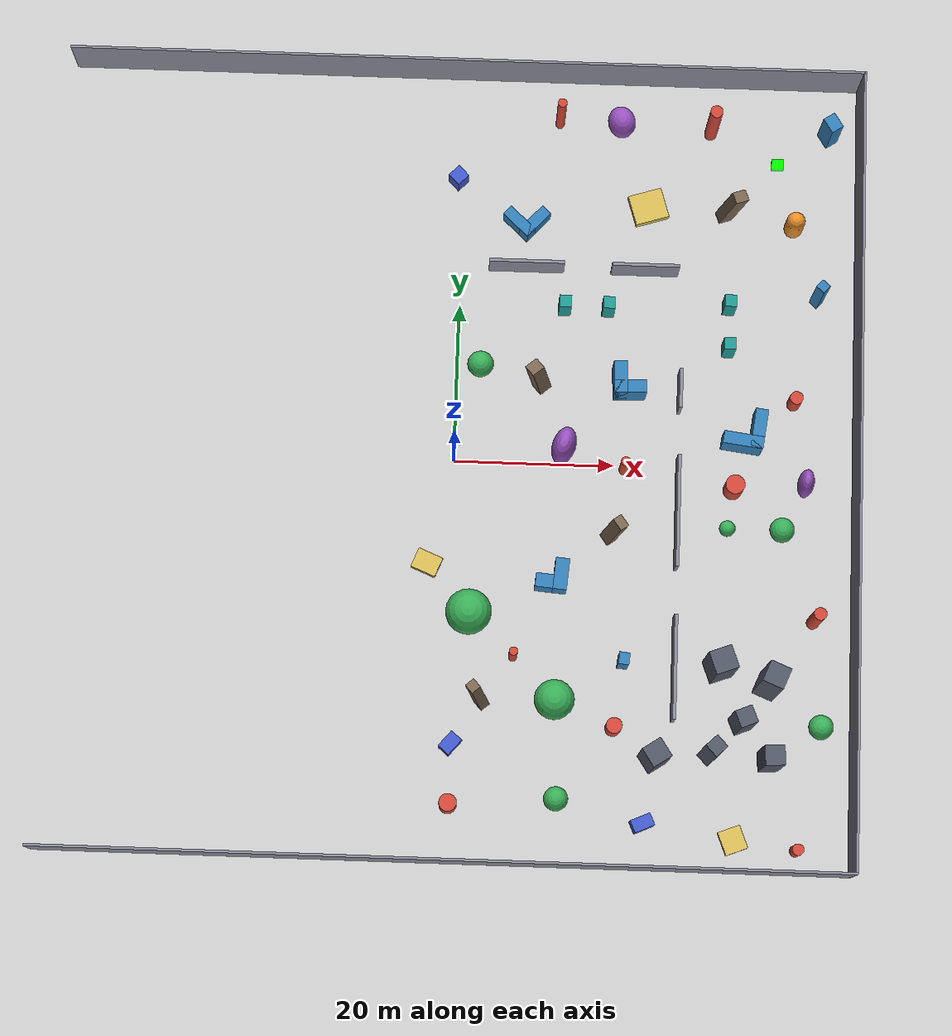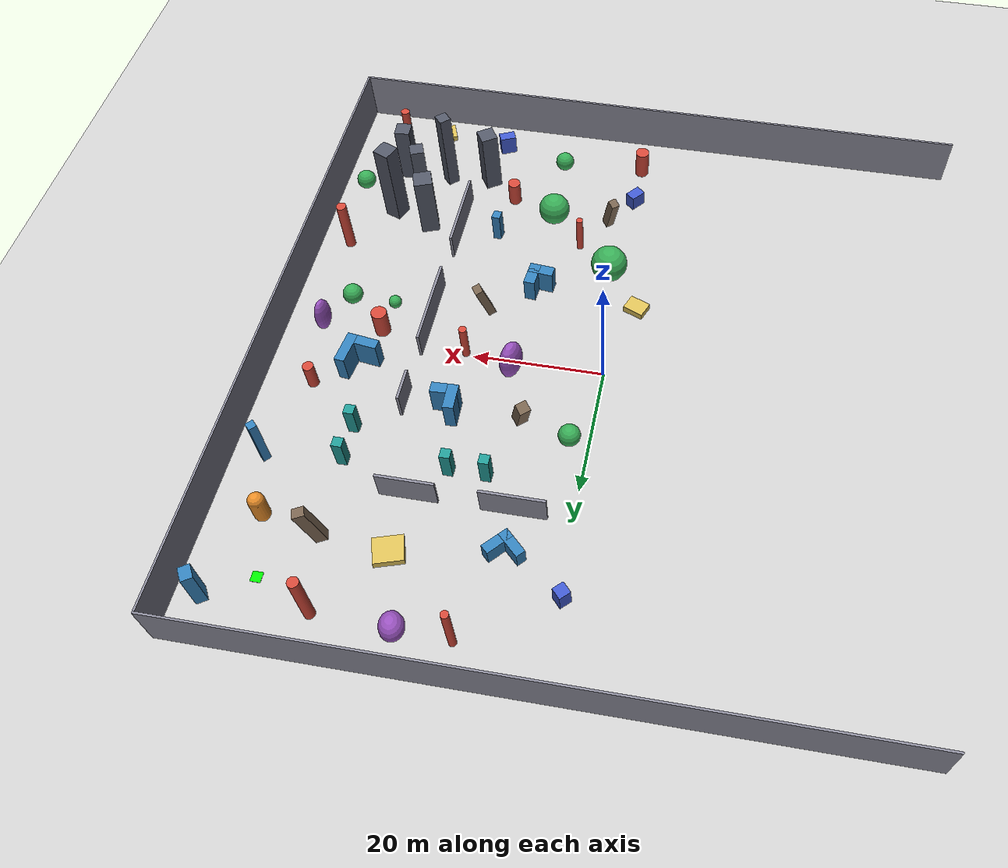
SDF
<sdf version="1.9">
 <world name="dwa_complex">
  <model name="ground_plane">
   <static>true</static>
   <link name="link">
    <collision name="collision">
     <geometry><plane><normal>0 0 1</normal><size>1 1</size></plane></geometry>
    </collision>
    <visual name="visual">
     <geometry><plane><normal>0 0 1</normal><size>110 110</size></plane></geometry>
     <material>
      <ambient>0.8 0.8 0.8 1</ambient>
      <diffuse>0.8 0.8 0.8 1</diffuse>
      <specular>0.8 0.8 0.8 1</specular>
     </material>
    </visual>
    <inertial>
     <mass>1</mass>
     <inertia><ixx>1</ixx><ixy>0</ixy><ixz>0</ixz><iyy>1</iyy><iyz>0</iyz><izz>1</izz></inertia>
    </inertial>
   </link>
  </model>
  <model name="goal_marker">
   <static>true</static>
   <pose>40.0 40.0 0.03 0 0 0</pose>
   <link name="link">
    <visual name="visual">
     <geometry><box><size>1.5 1.5 0.06</size></box></geometry>
     <material><ambient>0 1 0 1</ambient><diffuse>0 1 0 1</diffuse><emissive>0 0.5 0 1</emissive></material>
    </visual>
   </link>
  </model>
  <model name="boundary_north">
   <static>true</static>
   <pose>0.000 50.150 4.000 0.0000 0.0000 0.0000</pose>
   <link name="link">
    <collision name="collision"><geometry><box><size>100.600 0.300 8.000</size></box></geometry></collision>
    <visual name="visual">
     <geometry><box><size>100.600 0.300 8.000</size></box></geometry>
     <material><ambient>0.54 0.54 0.6 1</ambient><diffuse>0.54 0.54 0.6 1</diffuse></material>
    </visual>
   </link>
  </model>
  <model name="boundary_south">
   <static>true</static>
   <pose>0.000 -50.150 4.000 0.0000 0.0000 0.0000</pose>
   <link name="link">
    <collision name="collision"><geometry><box><size>100.600 0.300 8.000</size></box></geometry></collision>
    <visual name="visual">
     <geometry><box><size>100.600 0.300 8.000</size></box></geometry>
     <material><ambient>0.54 0.54 0.6 1</ambient><diffuse>0.54 0.54 0.6 1</diffuse></material>
    </visual>
   </link>
  </model>
  <model name="boundary_east">
   <static>true</static>
   <pose>50.150 0.000 4.000 0.0000 0.0000 0.0000</pose>
   <link name="link">
    <collision name="collision"><geometry><box><size>0.300 100.600 8.000</size></box></geometry></collision>
    <visual name="visual">
     <geometry><box><size>0.300 100.600 8.000</size></box></geometry>
     <material><ambient>0.54 0.54 0.6 1</ambient><diffuse>0.54 0.54 0.6 1</diffuse></material>
    </visual>
   </link>
  </model>
  <model name="barrier_6">
   <static>true</static>
   <pose>8.250 25.000 2.500 0.0000 0.0000 0.0000</pose>
   <link name="link">
    <collision name="collision"><geometry><box><size>9.500 0.400 5.000</size></box></geometry></collision>
    <visual name="visual">
     <geometry><box><size>9.500 0.400 5.000</size></box></geometry>
     <material><ambient>0.54 0.54 0.6 1</ambient><diffuse>0.54 0.54 0.6 1</diffuse></material>
    </visual>
   </link>
  </model>
  <model name="barrier_7">
   <static>true</static>
   <pose>23.250 25.000 2.500 0.0000 0.0000 0.0000</pose>
   <link name="link">
    <collision name="collision"><geometry><box><size>8.500 0.400 5.000</size></box></geometry></collision>
    <visual name="visual">
     <geometry><box><size>8.500 0.400 5.000</size></box></geometry>
     <material><ambient>0.54 0.54 0.6 1</ambient><diffuse>0.54 0.54 0.6 1</diffuse></material>
    </visual>
   </link>
  </model>
  <model name="barrier_8">
   <static>true</static>
   <pose>28.000 -25.500 2.250 0.0000 0.0000 1.5708</pose>
   <link name="link">
    <collision name="collision"><geometry><box><size>13.000 0.400 4.500</size></box></geometry></collision>
    <visual name="visual">
     <geometry><box><size>13.000 0.400 4.500</size></box></geometry>
     <material><ambient>0.54 0.54 0.6 1</ambient><diffuse>0.54 0.54 0.6 1</diffuse></material>
    </visual>
   </link>
  </model>
  <model name="barrier_9">
   <static>true</static>
   <pose>28.000 -6.000 2.250 0.0000 0.0000 1.5708</pose>
   <link name="link">
    <collision name="collision"><geometry><box><size>14.000 0.400 4.500</size></box></geometry></collision>
    <visual name="visual">
     <geometry><box><size>14.000 0.400 4.500</size></box></geometry>
     <material><ambient>0.54 0.54 0.6 1</ambient><diffuse>0.54 0.54 0.6 1</diffuse></material>
    </visual>
   </link>
  </model>
  <model name="barrier_10">
   <static>true</static>
   <pose>28.000 9.500 2.250 0.0000 0.0000 1.5708</pose>
   <link name="link">
    <collision name="collision"><geometry><box><size>5.000 0.400 4.500</size></box></geometry></collision>
    <visual name="visual">
     <geometry><box><size>5.000 0.400 4.500</size></box></geometry>
     <material><ambient>0.54 0.54 0.6 1</ambient><diffuse>0.54 0.54 0.6 1</diffuse></material>
    </visual>
   </link>
  </model>
  <model name="tower_1">
   <static>true</static>
   <pose>25.630 -36.656 5.352 0.0000 0.0000 0.5832</pose>
   <link name="link">
    <collision name="collision"><geometry><box><size>2.643 2.643 10.704</size></box></geometry></collision>
    <visual name="visual">
     <geometry><box><size>2.643 2.643 10.704</size></box></geometry>
     <material><ambient>0.32 0.34 0.4 1</ambient><diffuse>0.32 0.34 0.4 1</diffuse></material>
    </visual>
   </link>
  </model>
  <model name="tower_2">
   <static>true</static>
   <pose>36.346 -31.928 5.148 0.0000 0.0000 1.9603</pose>
   <link name="link">
    <collision name="collision"><geometry><box><size>2.204 2.204 10.296</size></box></geometry></collision>
    <visual name="visual">
     <geometry><box><size>2.204 2.204 10.296</size></box></geometry>
     <material><ambient>0.32 0.34 0.4 1</ambient><diffuse>0.32 0.34 0.4 1</diffuse></material>
    </visual>
   </link>
  </model>
  <model name="tower_3">
   <static>true</static>
   <pose>32.525 -35.933 6.976 0.0000 0.0000 2.3210</pose>
   <link name="link">
    <collision name="collision"><geometry><box><size>1.894 1.894 13.952</size></box></geometry></collision>
    <visual name="visual">
     <geometry><box><size>1.894 1.894 13.952</size></box></geometry>
     <material><ambient>0.32 0.34 0.4 1</ambient><diffuse>0.32 0.34 0.4 1</diffuse></material>
    </visual>
   </link>
  </model>
  <model name="tower_4">
   <static>true</static>
   <pose>39.584 -27.186 7.017 0.0000 0.0000 2.7536</pose>
   <link name="link">
    <collision name="collision"><geometry><box><size>2.688 2.688 14.034</size></box></geometry></collision>
    <visual name="visual">
     <geometry><box><size>2.688 2.688 14.034</size></box></geometry>
     <material><ambient>0.32 0.34 0.4 1</ambient><diffuse>0.32 0.34 0.4 1</diffuse></material>
    </visual>
   </link>
  </model>
  <model name="tower_5">
   <static>true</static>
   <pose>33.475 -25.198 5.358 0.0000 0.0000 1.9233</pose>
   <link name="link">
    <collision name="collision"><geometry><box><size>2.907 2.907 10.716</size></box></geometry></collision>
    <visual name="visual">
     <geometry><box><size>2.907 2.907 10.716</size></box></geometry>
     <material><ambient>0.32 0.34 0.4 1</ambient><diffuse>0.32 0.34 0.4 1</diffuse></material>
    </visual>
   </link>
  </model>
  <model name="tower_6">
   <static>true</static>
   <pose>39.885 -36.449 5.004 0.0000 0.0000 0.0622</pose>
   <link name="link">
    <collision name="collision"><geometry><box><size>2.439 2.439 10.007</size></box></geometry></collision>
    <visual name="visual">
     <geometry><box><size>2.439 2.439 10.007</size></box></geometry>
     <material><ambient>0.32 0.34 0.4 1</ambient><diffuse>0.32 0.34 0.4 1</diffuse></material>
    </visual>
   </link>
  </model>
  <model name="Lshape_1">
   <static>true</static>
   <pose>12.599 -14.312 2.031 0 0 1.4819</pose>
   <link name="link">
    <collision name="collision_0">
     <pose>0.000 -1.103 0.000 0 0 0</pose>
     <geometry><box><size>3.930 1.723 4.061</size></box></geometry>
    </collision>
    <visual name="visual_0">
     <pose>0.000 -1.103 0.000 0 0 0</pose>
     <geometry><box><size>3.930 1.723 4.061</size></box></geometry>
     <material><ambient>0.2 0.5 0.72 1</ambient><diffuse>0.2 0.5 0.72 1</diffuse></material>
    </visual>
    <collision name="collision_1">
     <pose>-1.103 0.000 0.000 0 0 0</pose>
     <geometry><box><size>1.723 3.930 4.061</size></box></geometry>
    </collision>
    <visual name="visual_1">
     <pose>-1.103 0.000 0.000 0 0 0</pose>
     <geometry><box><size>1.723 3.930 4.061</size></box></geometry>
     <material><ambient>0.2 0.5 0.72 1</ambient><diffuse>0.2 0.5 0.72 1</diffuse></material>
    </visual>
   </link>
  </model>
  <model name="Lshape_3">
   <static>true</static>
   <pose>21.629 10.607 2.422 0 0 0.0346</pose>
   <link name="link">
    <collision name="collision_0">
     <pose>0.000 -1.205 0.000 0 0 0</pose>
     <geometry><box><size>4.048 1.638 4.845</size></box></geometry>
    </collision>
    <visual name="visual_0">
     <pose>0.000 -1.205 0.000 0 0 0</pose>
     <geometry><box><size>4.048 1.638 4.845</size></box></geometry>
     <material><ambient>0.2 0.5 0.72 1</ambient><diffuse>0.2 0.5 0.72 1</diffuse></material>
    </visual>
    <collision name="collision_1">
     <pose>-1.205 0.000 0.000 0 0 0</pose>
     <geometry><box><size>1.638 4.048 4.845</size></box></geometry>
    </collision>
    <visual name="visual_1">
     <pose>-1.205 0.000 0.000 0 0 0</pose>
     <geometry><box><size>1.638 4.048 4.845</size></box></geometry>
     <material><ambient>0.2 0.5 0.72 1</ambient><diffuse>0.2 0.5 0.72 1</diffuse></material>
    </visual>
   </link>
  </model>
  <model name="Lshape_5">
   <static>true</static>
   <pose>8.104 31.694 1.416 0 0 0.8276</pose>
   <link name="link">
    <collision name="collision_0">
     <pose>0.000 -1.392 0.000 0 0 0</pose>
     <geometry><box><size>4.244 1.459 2.833</size></box></geometry>
    </collision>
    <visual name="visual_0">
     <pose>0.000 -1.392 0.000 0 0 0</pose>
     <geometry><box><size>4.244 1.459 2.833</size></box></geometry>
     <material><ambient>0.2 0.5 0.72 1</ambient><diffuse>0.2 0.5 0.72 1</diffuse></material>
    </visual>
    <collision name="collision_1">
     <pose>-1.392 0.000 0.000 0 0 0</pose>
     <geometry><box><size>1.459 4.244 2.833</size></box></geometry>
    </collision>
    <visual name="visual_1">
     <pose>-1.392 0.000 0.000 0 0 0</pose>
     <geometry><box><size>1.459 4.244 2.833</size></box></geometry>
     <material><ambient>0.2 0.5 0.72 1</ambient><diffuse>0.2 0.5 0.72 1</diffuse></material>
    </visual>
   </link>
  </model>
  <model name="Lshape_6">
   <static>true</static>
   <pose>36.153 4.822 2.345 0 0 1.4391</pose>
   <link name="link">
    <collision name="collision_0">
     <pose>0.000 -1.731 0.000 0 0 0</pose>
     <geometry><box><size>5.026 1.564 4.689</size></box></geometry>
    </collision>
    <visual name="visual_0">
     <pose>0.000 -1.731 0.000 0 0 0</pose>
     <geometry><box><size>5.026 1.564 4.689</size></box></geometry>
     <material><ambient>0.2 0.5 0.72 1</ambient><diffuse>0.2 0.5 0.72 1</diffuse></material>
    </visual>
    <collision name="collision_1">
     <pose>-1.731 0.000 0.000 0 0 0</pose>
     <geometry><box><size>1.564 5.026 4.689</size></box></geometry>
    </collision>
    <visual name="visual_1">
     <pose>-1.731 0.000 0.000 0 0 0</pose>
     <geometry><box><size>1.564 5.026 4.689</size></box></geometry>
     <material><ambient>0.2 0.5 0.72 1</ambient><diffuse>0.2 0.5 0.72 1</diffuse></material>
    </visual>
   </link>
  </model>
  <model name="lean_1">
   <static>true</static>
   <pose>20.133 -8.637 3.189 0.0000 0.2771 0.6278</pose>
   <link name="link">
    <collision name="collision"><geometry><box><size>1.271 1.679 6.270</size></box></geometry></collision>
    <visual name="visual">
     <geometry><box><size>1.271 1.679 6.270</size></box></geometry>
     <material><ambient>0.48 0.4 0.32 1</ambient><diffuse>0.48 0.4 0.32 1</diffuse></material>
    </visual>
   </link>
  </model>
  <model name="lean_3">
   <static>true</static>
   <pose>10.173 10.582 2.898 0.0000 0.3129 2.2647</pose>
   <link name="link">
    <collision name="collision"><geometry><box><size>1.673 1.735 5.550</size></box></geometry></collision>
    <visual name="visual">
     <geometry><box><size>1.673 1.735 5.550</size></box></geometry>
     <material><ambient>0.48 0.4 0.32 1</ambient><diffuse>0.48 0.4 0.32 1</diffuse></material>
    </visual>
   </link>
  </model>
  <model name="lean_5">
   <static>true</static>
   <pose>3.838 -29.724 3.300 0.0000 0.2964 2.2686</pose>
   <link name="link">
    <collision name="collision"><geometry><box><size>1.414 1.313 6.470</size></box></geometry></collision>
    <visual name="visual">
     <geometry><box><size>1.414 1.313 6.470</size></box></geometry>
     <material><ambient>0.48 0.4 0.32 1</ambient><diffuse>0.48 0.4 0.32 1</diffuse></material>
    </visual>
   </link>
  </model>
  <model name="lean_6">
   <static>true</static>
   <pose>33.973 33.186 3.964 0.0000 0.2171 0.3669</pose>
   <link name="link">
    <collision name="collision"><geometry><box><size>1.753 1.471 7.733</size></box></geometry></collision>
    <visual name="visual">
     <geometry><box><size>1.753 1.471 7.733</size></box></geometry>
     <material><ambient>0.48 0.4 0.32 1</ambient><diffuse>0.48 0.4 0.32 1</diffuse></material>
    </visual>
   </link>
  </model>
  <model name="gate_1">
   <static>true</static>
   <pose>13.250 20.000 2.500 0.0000 0.0000 1.5708</pose>
   <link name="link">
    <collision name="collision"><geometry><box><size>1.500 1.500 5.000</size></box></geometry></collision>
    <visual name="visual">
     <geometry><box><size>1.500 1.500 5.000</size></box></geometry>
     <material><ambient>0.13 0.6 0.58 1</ambient><diffuse>0.13 0.6 0.58 1</diffuse></material>
    </visual>
   </link>
  </model>
  <model name="gate_2">
   <static>true</static>
   <pose>18.750 20.000 2.500 0.0000 0.0000 1.5708</pose>
   <link name="link">
    <collision name="collision"><geometry><box><size>1.500 1.500 5.000</size></box></geometry></collision>
    <visual name="visual">
     <geometry><box><size>1.500 1.500 5.000</size></box></geometry>
     <material><ambient>0.13 0.6 0.58 1</ambient><diffuse>0.13 0.6 0.58 1</diffuse></material>
    </visual>
   </link>
  </model>
  <model name="gate_5">
   <static>true</static>
   <pose>34.000 20.750 2.500 0.0000 0.0000 0.0000</pose>
   <link name="link">
    <collision name="collision"><geometry><box><size>1.500 1.500 5.000</size></box></geometry></collision>
    <visual name="visual">
     <geometry><box><size>1.500 1.500 5.000</size></box></geometry>
     <material><ambient>0.13 0.6 0.58 1</ambient><diffuse>0.13 0.6 0.58 1</diffuse></material>
    </visual>
   </link>
  </model>
  <model name="gate_6">
   <static>true</static>
   <pose>34.000 15.250 2.500 0.0000 0.0000 0.0000</pose>
   <link name="link">
    <collision name="collision"><geometry><box><size>1.500 1.500 5.000</size></box></geometry></collision>
    <visual name="visual">
     <geometry><box><size>1.500 1.500 5.000</size></box></geometry>
     <material><ambient>0.13 0.6 0.58 1</ambient><diffuse>0.13 0.6 0.58 1</diffuse></material>
    </visual>
   </link>
  </model>
  <model name="cyl_8">
   <static>true</static>
   <pose>0.619 -43.099 2.335 0.0000 0.0000 0.0000</pose>
   <link name="link">
    <collision name="collision">
     <geometry><cylinder><radius>1.097</radius><length>4.669</length></cylinder></geometry>
    </collision>
    <visual name="visual">
     <geometry><cylinder><radius>1.097</radius><length>4.669</length></cylinder></geometry>
     <material><ambient>0.82 0.28 0.22 1</ambient><diffuse>0.82 0.28 0.22 1</diffuse></material>
    </visual>
   </link>
  </model>
  <model name="box_4">
   <static>true</static>
   <pose>0.651 -35.645 1.251 0.0000 0.0000 0.8633</pose>
   <link name="link">
    <collision name="collision"><geometry><box><size>2.490 1.714 2.501</size></box></geometry></collision>
    <visual name="visual">
     <geometry><box><size>2.490 1.714 2.501</size></box></geometry>
     <material><ambient>0.25 0.35 0.8 1</ambient><diffuse>0.25 0.35 0.8 1</diffuse></material>
    </visual>
   </link>
  </model>
  <model name="boulder_3">
   <static>true</static>
   <pose>2.387 -19.397 2.863 0.0000 0.0000 0.0000</pose>
   <link name="link">
    <collision name="collision"><geometry><sphere><radius>2.863</radius></sphere></geometry></collision>
    <visual name="visual">
     <geometry><sphere><radius>2.863</radius></sphere></geometry>
     <material><ambient>0.22 0.68 0.34 1</ambient><diffuse>0.22 0.68 0.34 1</diffuse></material>
    </visual>
   </link>
  </model>
  <model name="platform_5">
   <static>true</static>
   <pose>-3.017 -13.127 0.556 0.0000 0.0000 1.1793</pose>
   <link name="link">
    <collision name="collision"><geometry><box><size>2.544 3.271 1.111</size></box></geometry></collision>
    <visual name="visual">
     <geometry><box><size>2.544 3.271 1.111</size></box></geometry>
     <material><ambient>0.85 0.74 0.34 1</ambient><diffuse>0.85 0.74 0.34 1</diffuse></material>
    </visual>
   </link>
  </model>
  <model name="sphere_4">
   <static>true</static>
   <pose>2.842 12.248 1.658 0.0000 0.0000 0.0000</pose>
   <link name="link">
    <collision name="collision"><geometry><sphere><radius>1.658</radius></sphere></geometry></collision>
    <visual name="visual">
     <geometry><sphere><radius>1.658</radius></sphere></geometry>
     <material><ambient>0.22 0.68 0.34 1</ambient><diffuse>0.22 0.68 0.34 1</diffuse></material>
    </visual>
   </link>
  </model>
  <model name="box_5">
   <static>true</static>
   <pose>-0.709 36.382 1.570 0.0000 0.0000 0.7727</pose>
   <link name="link">
    <collision name="collision"><geometry><box><size>1.799 1.803 3.141</size></box></geometry></collision>
    <visual name="visual">
     <geometry><box><size>1.799 1.803 3.141</size></box></geometry>
     <material><ambient>0.25 0.35 0.8 1</ambient><diffuse>0.25 0.35 0.8 1</diffuse></material>
    </visual>
   </link>
  </model>
  <model name="sphere_5">
   <static>true</static>
   <pose>13.861 -41.988 1.518 0.0000 0.0000 0.0000</pose>
   <link name="link">
    <collision name="collision"><geometry><sphere><radius>1.518</radius></sphere></geometry></collision>
    <visual name="visual">
     <geometry><sphere><radius>1.518</radius></sphere></geometry>
     <material><ambient>0.22 0.68 0.34 1</ambient><diffuse>0.22 0.68 0.34 1</diffuse></material>
    </visual>
   </link>
  </model>
  <model name="boulder_4">
   <static>true</static>
   <pose>13.320 -29.887 2.500 0.0000 0.0000 0.0000</pose>
   <link name="link">
    <collision name="collision"><geometry><sphere><radius>2.500</radius></sphere></geometry></collision>
    <visual name="visual">
     <geometry><sphere><radius>2.500</radius></sphere></geometry>
     <material><ambient>0.22 0.68 0.34 1</ambient><diffuse>0.22 0.68 0.34 1</diffuse></material>
    </visual>
   </link>
  </model>
  <model name="column_3">
   <static>true</static>
   <pose>8.056 -24.533 3.177 0.0000 0.0000 0.0000</pose>
   <link name="link">
    <collision name="collision">
     <geometry><cylinder><radius>0.533</radius><length>6.355</length></cylinder></geometry>
    </collision>
    <visual name="visual">
     <geometry><cylinder><radius>0.533</radius><length>6.355</length></cylinder></geometry>
     <material><ambient>0.82 0.28 0.22 1</ambient><diffuse>0.82 0.28 0.22 1</diffuse></material>
    </visual>
   </link>
  </model>
  <model name="ellipsoid_3">
   <static>true</static>
   <pose>13.607 1.787 3.301 0.0000 0.0000 1.2939</pose>
   <link name="link">
    <collision name="collision">
     <geometry><ellipsoid><radii>2.397 1.471 3.301</radii></ellipsoid></geometry>
    </collision>
    <visual name="visual">
     <geometry><ellipsoid><radii>2.397 1.471 3.301</radii></ellipsoid></geometry>
     <material><ambient>0.6 0.32 0.75 1</ambient><diffuse>0.6 0.32 0.75 1</diffuse></material>
    </visual>
   </link>
  </model>
  <model name="column_4">
   <static>true</static>
   <pose>12.031 44.452 4.631 0.0000 0.0000 0.0000</pose>
   <link name="link">
    <collision name="collision">
     <geometry><cylinder><radius>0.565</radius><length>9.262</length></cylinder></geometry>
    </collision>
    <visual name="visual">
     <geometry><cylinder><radius>0.565</radius><length>9.262</length></cylinder></geometry>
     <material><ambient>0.82 0.28 0.22 1</ambient><diffuse>0.82 0.28 0.22 1</diffuse></material>
    </visual>
   </link>
  </model>
  <model name="box_6">
   <static>true</static>
   <pose>24.494 -44.656 1.649 0.0000 0.0000 1.9862</pose>
   <link name="link">
    <collision name="collision"><geometry><box><size>1.606 2.623 3.297</size></box></geometry></collision>
    <visual name="visual">
     <geometry><box><size>1.606 2.623 3.297</size></box></geometry>
     <material><ambient>0.25 0.35 0.8 1</ambient><diffuse>0.25 0.35 0.8 1</diffuse></material>
    </visual>
   </link>
  </model>
  <model name="cyl_10">
   <static>true</static>
   <pose>20.710 -32.969 2.055 0.0000 0.0000 0.0000</pose>
   <link name="link">
    <collision name="collision">
     <geometry><cylinder><radius>0.998</radius><length>4.110</length></cylinder></geometry>
    </collision>
    <visual name="visual">
     <geometry><cylinder><radius>0.998</radius><length>4.110</length></cylinder></geometry>
     <material><ambient>0.82 0.28 0.22 1</ambient><diffuse>0.82 0.28 0.22 1</diffuse></material>
    </visual>
   </link>
  </model>
  <model name="pillar_5">
   <static>true</static>
   <pose>21.705 -24.778 2.501 0.0000 0.0000 3.0375</pose>
   <link name="link">
    <collision name="collision"><geometry><box><size>1.301 1.493 5.003</size></box></geometry></collision>
    <visual name="visual">
     <geometry><box><size>1.301 1.493 5.003</size></box></geometry>
     <material><ambient>0.2 0.5 0.72 1</ambient><diffuse>0.2 0.5 0.72 1</diffuse></material>
    </visual>
   </link>
  </model>
  <model name="column_5">
   <static>true</static>
   <pose>21.276 -0.439 3.042 0.0000 0.0000 0.0000</pose>
   <link name="link">
    <collision name="collision">
     <geometry><cylinder><radius>0.601</radius><length>6.085</length></cylinder></geometry>
    </collision>
    <visual name="visual">
     <geometry><cylinder><radius>0.601</radius><length>6.085</length></cylinder></geometry>
     <material><ambient>0.82 0.28 0.22 1</ambient><diffuse>0.82 0.28 0.22 1</diffuse></material>
    </visual>
   </link>
  </model>
  <model name="platform_6">
   <static>true</static>
   <pose>23.586 33.628 0.595 0.0000 0.0000 0.2996</pose>
   <link name="link">
    <collision name="collision"><geometry><box><size>4.314 3.866 1.189</size></box></geometry></collision>
    <visual name="visual">
     <geometry><box><size>4.314 3.866 1.189</size></box></geometry>
     <material><ambient>0.85 0.74 0.34 1</ambient><diffuse>0.85 0.74 0.34 1</diffuse></material>
    </visual>
   </link>
  </model>
  <model name="ellipsoid_4">
   <static>true</static>
   <pose>19.862 44.373 2.049 0.0000 0.0000 1.8593</pose>
   <link name="link">
    <collision name="collision">
     <geometry><ellipsoid><radii>2.009 1.732 2.049</radii></ellipsoid></geometry>
    </collision>
    <visual name="visual">
     <geometry><ellipsoid><radii>2.009 1.732 2.049</radii></ellipsoid></geometry>
     <material><ambient>0.6 0.32 0.75 1</ambient><diffuse>0.6 0.32 0.75 1</diffuse></material>
    </visual>
   </link>
  </model>
  <model name="platform_7">
   <static>true</static>
   <pose>35.738 -46.269 0.484 0.0000 0.0000 0.3726</pose>
   <link name="link">
    <collision name="collision"><geometry><box><size>2.865 2.999 0.968</size></box></geometry></collision>
    <visual name="visual">
     <geometry><box><size>2.865 2.999 0.968</size></box></geometry>
     <material><ambient>0.85 0.74 0.34 1</ambient><diffuse>0.85 0.74 0.34 1</diffuse></material>
    </visual>
   </link>
  </model>
  <model name="sphere_6">
   <static>true</static>
   <pose>34.360 -7.589 1.015 0.0000 0.0000 0.0000</pose>
   <link name="link">
    <collision name="collision"><geometry><sphere><radius>1.015</radius></sphere></geometry></collision>
    <visual name="visual">
     <geometry><sphere><radius>1.015</radius></sphere></geometry>
     <material><ambient>0.22 0.68 0.34 1</ambient><diffuse>0.22 0.68 0.34 1</diffuse></material>
    </visual>
   </link>
  </model>
  <model name="cyl_11">
   <static>true</static>
   <pose>34.995 -2.552 2.252 0.0000 0.0000 0.0000</pose>
   <link name="link">
    <collision name="collision">
     <geometry><cylinder><radius>1.203</radius><length>4.505</length></cylinder></geometry>
    </collision>
    <visual name="visual">
     <geometry><cylinder><radius>1.203</radius><length>4.505</length></cylinder></geometry>
     <material><ambient>0.82 0.28 0.22 1</ambient><diffuse>0.82 0.28 0.22 1</diffuse></material>
    </visual>
   </link>
  </model>
  <model name="column_6">
   <static>true</static>
   <pose>31.367 43.781 4.955 0.0000 0.0000 0.0000</pose>
   <link name="link">
    <collision name="collision">
     <geometry><cylinder><radius>0.787</radius><length>9.910</length></cylinder></geometry>
    </collision>
    <visual name="visual">
     <geometry><cylinder><radius>0.787</radius><length>9.910</length></cylinder></geometry>
     <material><ambient>0.82 0.28 0.22 1</ambient><diffuse>0.82 0.28 0.22 1</diffuse></material>
    </visual>
   </link>
  </model>
  <model name="cyl_12">
   <static>true</static>
   <pose>43.499 -47.284 1.812 0.0000 0.0000 0.0000</pose>
   <link name="link">
    <collision name="collision">
     <geometry><cylinder><radius>0.713</radius><length>3.625</length></cylinder></geometry>
    </collision>
    <visual name="visual">
     <geometry><cylinder><radius>0.713</radius><length>3.625</length></cylinder></geometry>
     <material><ambient>0.82 0.28 0.22 1</ambient><diffuse>0.82 0.28 0.22 1</diffuse></material>
    </visual>
   </link>
  </model>
  <model name="sphere_7">
   <static>true</static>
   <pose>46.311 -32.100 1.542 0.0000 0.0000 0.0000</pose>
   <link name="link">
    <collision name="collision"><geometry><sphere><radius>1.542</radius></sphere></geometry></collision>
    <visual name="visual">
     <geometry><sphere><radius>1.542</radius></sphere></geometry>
     <material><ambient>0.22 0.68 0.34 1</ambient><diffuse>0.22 0.68 0.34 1</diffuse></material>
    </visual>
   </link>
  </model>
  <model name="column_7">
   <static>true</static>
   <pose>45.272 -18.978 4.364 0.0000 0.0000 0.0000</pose>
   <link name="link">
    <collision name="collision">
     <geometry><cylinder><radius>0.793</radius><length>8.727</length></cylinder></geometry>
    </collision>
    <visual name="visual">
     <geometry><cylinder><radius>0.793</radius><length>8.727</length></cylinder></geometry>
     <material><ambient>0.82 0.28 0.22 1</ambient><diffuse>0.82 0.28 0.22 1</diffuse></material>
    </visual>
   </link>
  </model>
  <model name="sphere_8">
   <static>true</static>
   <pose>41.153 -7.647 1.564 0.0000 0.0000 0.0000</pose>
   <link name="link">
    <collision name="collision"><geometry><sphere><radius>1.564</radius></sphere></geometry></collision>
    <visual name="visual">
     <geometry><sphere><radius>1.564</radius></sphere></geometry>
     <material><ambient>0.22 0.68 0.34 1</ambient><diffuse>0.22 0.68 0.34 1</diffuse></material>
    </visual>
   </link>
  </model>
  <model name="ellipsoid_5">
   <static>true</static>
   <pose>43.903 -1.893 2.991 0.0000 0.0000 1.4426</pose>
   <link name="link">
    <collision name="collision">
     <geometry><ellipsoid><radii>1.740 1.005 2.991</radii></ellipsoid></geometry>
    </collision>
    <visual name="visual">
     <geometry><ellipsoid><radii>1.740 1.005 2.991</radii></ellipsoid></geometry>
     <material><ambient>0.6 0.32 0.75 1</ambient><diffuse>0.6 0.32 0.75 1</diffuse></material>
    </visual>
   </link>
  </model>
  <model name="cyl_13">
   <static>true</static>
   <pose>42.458 8.691 2.188 0.0000 0.0000 0.0000</pose>
   <link name="link">
    <collision name="collision">
     <geometry><cylinder><radius>0.829</radius><length>4.376</length></cylinder></geometry>
    </collision>
    <visual name="visual">
     <geometry><cylinder><radius>0.829</radius><length>4.376</length></cylinder></geometry>
     <material><ambient>0.82 0.28 0.22 1</ambient><diffuse>0.82 0.28 0.22 1</diffuse></material>
    </visual>
   </link>
  </model>
  <model name="pillar_6">
   <static>true</static>
   <pose>45.164 22.090 4.235 0.0000 0.0000 0.8340</pose>
   <link name="link">
    <collision name="collision"><geometry><box><size>1.208 1.229 8.469</size></box></geometry></collision>
    <visual name="visual">
     <geometry><box><size>1.208 1.229 8.469</size></box></geometry>
     <material><ambient>0.2 0.5 0.72 1</ambient><diffuse>0.2 0.5 0.72 1</diffuse></material>
    </visual>
   </link>
  </model>
  <model name="capsule_1">
   <static>true</static>
   <pose>42.013 31.320 2.989 0.0000 0.0000 0.0000</pose>
   <link name="link">
    <collision name="collision">
     <geometry><capsule><radius>1.180</radius><length>3.618</length></capsule></geometry>
    </collision>
    <visual name="visual">
     <geometry><capsule><radius>1.180</radius><length>3.618</length></capsule></geometry>
     <material><ambient>0.92 0.56 0.16 1</ambient><diffuse>0.92 0.56 0.16 1</diffuse></material>
    </visual>
   </link>
  </model>
  <model name="pillar_7">
   <static>true</static>
   <pose>46.324 43.720 3.515 0.0000 0.0000 2.1415</pose>
   <link name="link">
    <collision name="collision"><geometry><box><size>2.076 1.635 7.029</size></box></geometry></collision>
    <visual name="visual">
     <geometry><box><size>2.076 1.635 7.029</size></box></geometry>
     <material><ambient>0.2 0.5 0.72 1</ambient><diffuse>0.2 0.5 0.72 1</diffuse></material>
    </visual>
   </link>
  </model>
 </world>
</sdf>
